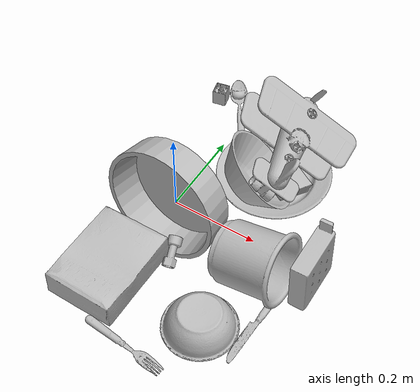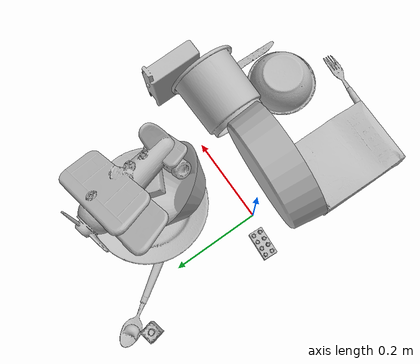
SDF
<sdf version="1.4">
  <world name="default">
    <light name="light1" type="point">
      <pose>0 0 1 0 0 0</pose>
      <diffuse>3 3 3 1</diffuse>
      <specular>3 3 3 1</specular>
    </light>
    <light name="light2" type="point">
      <pose>0 0.5 2 0 0 0</pose>
      <diffuse>1 1 1 1</diffuse>
      <specular>1 1 1 1</specular>
    </light>
    <light name="light3" type="point">
      <pose>0 0.5 2 0 0 0</pose>
      <diffuse>3 3 3 1</diffuse>
      <specular>3 3 3 1</specular>
    </light>
    <scene>
      <ambient>0.7 0.7 0.7</ambient>
    </scene>
    <model name="plate1">
      <link name="link_plate1">
        <collision name="default">
          <geometry>
            <mesh>
              <uri>model://plate/collision_meshes/collision.obj</uri>
              <scale>1.0 1.0 1.0</scale>
            </mesh>
          </geometry>
          <surface>
            <friction>
              <ode>
                <mu>0.5</mu>
                <mu2>0.5</mu2>
              </ode>
            </friction>
          <contact>
        <ode>
            <max_vel>0</max_vel>
            <min_depth>0.0001</min_depth>
            <kp>1e8</kp>
        </ode>
    </contact></surface>
        </collision>
        <visual name="default">
          <geometry>
            <mesh>
              <uri>model://plate/visual_meshes/visual.dae</uri>
              <scale>1.0 1.0 1.0</scale>
            </mesh>
          </geometry>
        </visual>
        <inertial>
          <mass>0.1516857147216797</mass>
          <pose>-0.0006044649053364992 0.00027825761935673654 -0.0010561972158029675 0.002218765199568956 -0.003225488596237322 0.4526153800388047</pose>
          <inertia>
            <ixx>0.00070958876</ixx>
            <iyy>0.0007028018</iyy>
            <izz>0.00138785</izz>
            <ixy>0</ixy>
            <ixz>0</ixz>
            <iyz>0</iyz>
          </inertia>
        </inertial>
      </link>
      <pose>0.14870096743106842 0.17411980032920837 0.013738158158957958 6.141627667578424e-05 -1.699594887896289e-05 0.7023719165703675</pose>
    </model>
    <model name="plate2">
      <link name="link_plate2">
        <collision name="default">
          <geometry>
            <mesh>
              <uri>model://pan_tefal/collision_meshes/collision.obj</uri>
              <scale>1.0 1.0 1.0</scale>
            </mesh>
          </geometry>
          <surface>
            <friction>
              <ode>
                <mu>0.5</mu>
                <mu2>0.5</mu2>
              </ode>
            </friction>
          <contact>
        <ode>
            <max_vel>0</max_vel>
            <min_depth>0.0001</min_depth>
            <kp>1e8</kp>
        </ode>
    </contact></surface>
        </collision>
        <visual name="default">
          <geometry>
            <mesh>
              <uri>model://pan_tefal/visual_meshes/visual.dae</uri>
              <scale>1.0 1.0 1.0</scale>
            </mesh>
          </geometry>
        </visual>
        <inertial>
          <mass>1.0862284898757935</mass>
          <pose>-0.00018001910939347 3.2794348953757435e-05 -0.00851493515074253 0.0008190334899032376 -0.0003301482999058744 -0.3318501395419688</pose>
          <inertia>
            <ixx>0.0074981838</ixx>
            <iyy>0.007546525</iyy>
            <izz>0.013802713</izz>
            <ixy>0</ixy>
            <ixz>0</ixz>
            <iyz>0</iyz>
          </inertia>
        </inertial>
      </link>
      <pose>0.03981665149331093 -0.0755617618560791 0.12880486249923706 1.4170503664129595 0.823294803985501 -0.17547519777109918</pose>
    </model>
    <model name="bowl1">
      <link name="link_bowl1">
        <collision name="default">
          <geometry>
            <mesh>
              <uri>model://bowl_a/collision_meshes/collision.obj</uri>
              <scale>1.0 1.0 1.0</scale>
            </mesh>
          </geometry>
          <surface>
            <friction>
              <ode>
                <mu>0.5</mu>
                <mu2>0.5</mu2>
              </ode>
            </friction>
          <contact>
        <ode>
            <max_vel>0</max_vel>
            <min_depth>0.0001</min_depth>
            <kp>1e8</kp>
        </ode>
    </contact></surface>
        </collision>
        <visual name="default">
          <geometry>
            <mesh>
              <uri>model://bowl_a/visual_meshes/visual.dae</uri>
              <scale>1.0 1.0 1.0</scale>
            </mesh>
          </geometry>
        </visual>
        <inertial>
          <mass>0.23323877155780792</mass>
          <pose>0.0002786752884276211 4.7312129026977345e-05 -0.001376529224216938 -0.000980538139416196 -0.00109382495954127 -0.19123674059098103</pose>
          <inertia>
            <ixx>0.0006640416</ixx>
            <iyy>0.0006681184</iyy>
            <izz>0.0011810234</izz>
            <ixy>0</ixy>
            <ixz>0</ixz>
            <iyz>0</iyz>
          </inertia>
        </inertial>
      </link>
      <pose>0.12943598628044128 0.10585661977529526 0.06788426637649536 -0.41808294717440764 0.7521772602362682 0.10117856612589782</pose>
    </model>
    <model name="bowl2">
      <link name="link_bowl2">
        <collision name="default">
          <geometry>
            <mesh>
              <uri>model://bowl/collision_meshes/collision.obj</uri>
              <scale>1.0 1.0 1.0</scale>
            </mesh>
          </geometry>
          <surface>
            <friction>
              <ode>
                <mu>0.5</mu>
                <mu2>0.5</mu2>
              </ode>
            </friction>
          <contact>
        <ode>
            <max_vel>0</max_vel>
            <min_depth>0.0001</min_depth>
            <kp>1e8</kp>
        </ode>
    </contact></surface>
        </collision>
        <visual name="default">
          <geometry>
            <mesh>
              <uri>model://bowl/visual_meshes/visual.dae</uri>
              <scale>1.0 1.0 1.0</scale>
            </mesh>
          </geometry>
        </visual>
        <inertial>
          <mass>0.08787161856889725</mass>
          <pose>0.00020445531117729843 -0.0010302038863301277 -0.0008042651461437345 -0.015764035308279474 0.014546860922519275 0.7140443952173783</pose>
          <inertia>
            <ixx>0.00020184812</ixx>
            <iyy>0.00019733804</iyy>
            <izz>0.00033957793</izz>
            <ixy>0</ixy>
            <ixz>0</ixz>
            <iyz>0</iyz>
          </inertia>
        </inertial>
      </link>
      <pose>0.21849307417869568 -0.2398568093776703 0.0272473506629467 -3.132724117568045 0.000675453981492884 2.170110615537321</pose>
    </model>
    <model name="silverware1">
      <link name="link_silverware1">
        <collision name="default">
          <geometry>
            <mesh>
              <uri>model://spoon/collision_meshes/collision.obj</uri>
              <scale>1.0 1.0 1.0</scale>
            </mesh>
          </geometry>
          <surface>
            <friction>
              <ode>
                <mu>0.5</mu>
                <mu2>0.5</mu2>
              </ode>
            </friction>
          <contact>
        <ode>
            <max_vel>0</max_vel>
            <min_depth>0.0001</min_depth>
            <kp>1e8</kp>
        </ode>
    </contact></surface>
        </collision>
        <visual name="default">
          <geometry>
            <mesh>
              <uri>model://spoon/visual_meshes/visual.dae</uri>
              <scale>1.0 1.0 1.0</scale>
            </mesh>
          </geometry>
        </visual>
        <inertial>
          <mass>0.028818774968385696</mass>
          <pose>-0.0055263228714466095 -0.0016034181462600827 -0.0007271657814271748 0.03521556092832266 -0.039065843026344464 0.006150610888934851</pose>
          <inertia>
            <ixx>1.6029475e-06</ixx>
            <iyy>0.0001096545</iyy>
            <izz>0.000110445</izz>
            <ixy>0</ixy>
            <ixz>0</ixz>
            <iyz>0</iyz>
          </inertia>
        </inertial>
      </link>
      <pose>-0.01865953952074051 0.2990374267101288 0.008385262452065945 0.006729193056312612 0.026893004296269583 2.1657593229345946</pose>
    </model>
    <model name="box1">
      <link name="link_box1">
        <collision name="default">
          <geometry>
            <mesh>
              <uri>model://cracker_box/collision_meshes/collision.obj</uri>
              <scale>1.0 1.0 1.0</scale>
            </mesh>
          </geometry>
          <surface>
            <friction>
              <ode>
                <mu>0.5</mu>
                <mu2>0.5</mu2>
              </ode>
            </friction>
          <contact>
        <ode>
            <max_vel>0</max_vel>
            <min_depth>0.0001</min_depth>
            <kp>1e8</kp>
        </ode>
    </contact></surface>
        </collision>
        <visual name="default">
          <geometry>
            <mesh>
              <uri>model://cracker_box/visual_meshes/visual.dae</uri>
              <scale>1.0 1.0 1.0</scale>
            </mesh>
          </geometry>
        </visual>
        <inertial>
          <mass>2.9781224727630615</mass>
          <pose>0.0009464174509048462 0.00025434247800149024 -0.0017029534792527556 -0.0003162077703261406 -0.01110649239447325 0.0025467938390949236</pose>
          <inertia>
            <ixx>0.007575013</ixx>
            <iyy>0.012507835</iyy>
            <izz>0.017849829</izz>
            <ixy>0</ixy>
            <ixz>0</ixz>
            <iyz>0</iyz>
          </inertia>
        </inertial>
      </link>
      <pose>-0.012931822799146175 -0.23197460174560547 0.036481812596321106 -0.011786535697046598 -0.007366159832075288 1.5548254275877826</pose>
    </model>
    <model name="box2">
      <link name="link_box2">
        <collision name="default">
          <geometry>
            <mesh>
              <uri>model://gelatin_box/collision_meshes/collision.obj</uri>
              <scale>1.0 1.0 1.0</scale>
            </mesh>
          </geometry>
          <surface>
            <friction>
              <ode>
                <mu>0.5</mu>
                <mu2>0.5</mu2>
              </ode>
            </friction>
          <contact>
        <ode>
            <max_vel>0</max_vel>
            <min_depth>0.0001</min_depth>
            <kp>1e8</kp>
        </ode>
    </contact></surface>
        </collision>
        <visual name="default">
          <geometry>
            <mesh>
              <uri>model://gelatin_box/visual_meshes/visual.dae</uri>
              <scale>1.0 1.0 1.0</scale>
            </mesh>
          </geometry>
        </visual>
        <inertial>
          <mass>0.16266882419586182</mass>
          <pose>0.0004319618456065655 0.00011156871914863586 -0.0003640321083366871 -0.0010503720968416132 -0.004755819155016646 0.016440559472150423</pose>
          <inertia>
            <ixx>0.00011483092</ixx>
            <iyy>8.202313e-05</iyy>
            <izz>0.00017479825</izz>
            <ixy>0</ixy>
            <ixz>0</ixz>
            <iyz>0</iyz>
          </inertia>
        </inertial>
      </link>
      <pose>0.19207265973091125 0.1578526496887207 0.04064542055130005 0.33500893612487354 -0.1765601525400918 2.709653114596254</pose>
    </model>
    <model name="cup1">
      <link name="link_cup1">
        <collision name="default">
          <geometry>
            <mesh>
              <uri>model://f_cups/collision_meshes/collision.obj</uri>
              <scale>2.0 2.0 2.0</scale>
            </mesh>
          </geometry>
          <surface>
            <friction>
              <ode>
                <mu>0.5</mu>
                <mu2>0.5</mu2>
              </ode>
            </friction>
          <contact>
        <ode>
            <max_vel>0</max_vel>
            <min_depth>0.0001</min_depth>
            <kp>1e8</kp>
        </ode>
    </contact></surface>
        </collision>
        <visual name="default">
          <geometry>
            <mesh>
              <uri>model://f_cups/visual_meshes/visual.dae</uri>
              <scale>2.0 2.0 2.0</scale>
            </mesh>
          </geometry>
        </visual>
        <inertial>
          <mass>0.6683602333068848</mass>
          <pose>-0.006342936307191849 -0.0012480152072384953 -0.0073110745288431644 0.7862253042657107 -0.260793604503958 -0.18237387444081576</pose>
          <inertia>
            <ixx>0.0025131067</ixx>
            <iyy>0.0026362767</iyy>
            <izz>0.0027444381</izz>
            <ixy>0</ixy>
            <ixz>0</ixz>
            <iyz>0</iyz>
          </inertia>
        </inertial>
      </link>
      <pose>0.24993127584457397 -0.08755441009998322 0.07690344005823135 1.4100860421215082 -0.29900247501083765 1.651753350535395</pose>
    </model>
    <model name="silverware2">
      <link name="link_silverware2">
        <collision name="default">
          <geometry>
            <mesh>
              <uri>model://knife/collision_meshes/collision.obj</uri>
              <scale>1.0 1.0 1.0</scale>
            </mesh>
          </geometry>
          <surface>
            <friction>
              <ode>
                <mu>0.5</mu>
                <mu2>0.5</mu2>
              </ode>
            </friction>
          <contact>
        <ode>
            <max_vel>0</max_vel>
            <min_depth>0.0001</min_depth>
            <kp>1e8</kp>
        </ode>
    </contact></surface>
        </collision>
        <visual name="default">
          <geometry>
            <mesh>
              <uri>model://knife/visual_meshes/visual.dae</uri>
              <scale>1.0 1.0 1.0</scale>
            </mesh>
          </geometry>
        </visual>
        <inertial>
          <mass>0.03087119571864605</mass>
          <pose>-0.023785250261425972 0.0015275123296305537 5.062009586254135e-05 0.07305987484925712 0.017248420899959087 -0.007409824084002247</pose>
          <inertia>
            <ixx>8.762499e-07</ixx>
            <iyy>0.000118602155</iyy>
            <izz>0.00011888435</izz>
            <ixy>0</ixy>
            <ixz>0</ixz>
            <iyz>0</iyz>
          </inertia>
        </inertial>
      </link>
      <pose>0.3101923167705536 -0.17684757709503174 0.007949828170239925 -0.021652844958936986 -0.014498860240088974 -1.5891129802059445</pose>
    </model>
    <model name="silverware3">
      <link name="link_silverware3">
        <collision name="default">
          <geometry>
            <mesh>
              <uri>model://fork/collision_meshes/collision.obj</uri>
              <scale>1.0 1.0 1.0</scale>
            </mesh>
          </geometry>
          <surface>
            <friction>
              <ode>
                <mu>0.5</mu>
                <mu2>0.5</mu2>
              </ode>
            </friction>
          <contact>
        <ode>
            <max_vel>0</max_vel>
            <min_depth>0.0001</min_depth>
            <kp>1e8</kp>
        </ode>
    </contact></surface>
        </collision>
        <visual name="default">
          <geometry>
            <mesh>
              <uri>model://fork/visual_meshes/visual.dae</uri>
              <scale>1.0 1.0 1.0</scale>
            </mesh>
          </geometry>
        </visual>
        <inertial>
          <mass>0.015284496359527111</mass>
          <pose>-0.02957003004848957 0.00046588233090005815 0.00032188600744120777 -0.013550803329795006 -0.010977829430356707 0.014453895799763906</pose>
          <inertia>
            <ixx>5.358081e-07</ixx>
            <iyy>3.9903432e-05</iyy>
            <izz>4.0143095e-05</izz>
            <ixy>0</ixy>
            <ixz>0</ixz>
            <iyz>0</iyz>
          </inertia>
        </inertial>
      </link>
      <pose>0.11293406039476395 -0.35836678743362427 0.007446612231433392 -3.0635015388932243 0.002835795645173165 -0.10214177916655592</pose>
    </model>
    <model name="toy1">
      <link name="link_toy1">
        <collision name="default">
          <geometry>
            <mesh>
              <uri>model://c_toy_airplane/collision_meshes/collision.obj</uri>
              <scale>1.0 1.0 1.0</scale>
            </mesh>
          </geometry>
          <surface>
            <friction>
              <ode>
                <mu>0.5</mu>
                <mu2>0.5</mu2>
              </ode>
            </friction>
          <contact>
        <ode>
            <max_vel>0</max_vel>
            <min_depth>0.0001</min_depth>
            <kp>1e8</kp>
        </ode>
    </contact></surface>
        </collision>
        <visual name="default">
          <geometry>
            <mesh>
              <uri>model://c_toy_airplane/visual_meshes/visual.dae</uri>
              <scale>1.0 1.0 1.0</scale>
            </mesh>
          </geometry>
        </visual>
        <inertial>
          <mass>0.014899278059601784</mass>
          <pose>-0.0002302424400113523 -4.428088118402229e-07 -0.006080529186874628 -0.00619304524108313 -0.016797611161866028 0.7655100812139064</pose>
          <inertia>
            <ixx>6.841441e-06</ixx>
            <iyy>6.822133e-06</iyy>
            <izz>1.6062353e-06</izz>
            <ixy>0</ixy>
            <ixz>0</ixz>
            <iyz>0</iyz>
          </inertia>
        </inertial>
      </link>
      <pose>0.07938630878925323 -0.13165754079818726 0.027878139168024063 2.1035552880954436 0.6577556407512614 0.6473772916233983</pose>
    </model>
    <model name="toy2">
      <link name="link_toy2">
        <collision name="default">
          <geometry>
            <mesh>
              <uri>model://nine_hole_peg_test/collision_meshes/collision.obj</uri>
              <scale>1.0 1.0 1.0</scale>
            </mesh>
          </geometry>
          <surface>
            <friction>
              <ode>
                <mu>0.5</mu>
                <mu2>0.5</mu2>
              </ode>
            </friction>
          <contact>
        <ode>
            <max_vel>0</max_vel>
            <min_depth>0.0001</min_depth>
            <kp>1e8</kp>
        </ode>
    </contact></surface>
        </collision>
        <visual name="default">
          <geometry>
            <mesh>
              <uri>model://nine_hole_peg_test/visual_meshes/visual.dae</uri>
              <scale>1.0 1.0 1.0</scale>
            </mesh>
          </geometry>
        </visual>
        <inertial>
          <mass>0.8674170970916748</mass>
          <pose>-0.004617386031895876 -0.009647614322602749 2.6460689696250483e-05 -0.0014666783129250742 0.0007194188660534222 -0.6342410037611789</pose>
          <inertia>
            <ixx>0.0013563493</ixx>
            <iyy>0.0012664091</iyy>
            <izz>0.0023767245</izz>
            <ixy>0</ixy>
            <ixz>0</ixz>
            <iyz>0</iyz>
          </inertia>
        </inertial>
      </link>
      <pose>0.35513532161712646 -0.02826579287648201 0.0739721730351448 1.5550082058606252 -0.009794723855504632 1.604396705800616</pose>
    </model>
    <model name="toy3">
      <link name="link_toy3">
        <collision name="default">
          <geometry>
            <mesh>
              <uri>model://a_toy_airplane/collision_meshes/collision.obj</uri>
              <scale>1.0 1.0 1.0</scale>
            </mesh>
          </geometry>
          <surface>
            <friction>
              <ode>
                <mu>0.5</mu>
                <mu2>0.5</mu2>
              </ode>
            </friction>
          <contact>
        <ode>
            <max_vel>0</max_vel>
            <min_depth>0.0001</min_depth>
            <kp>1e8</kp>
        </ode>
    </contact></surface>
        </collision>
        <visual name="default">
          <geometry>
            <mesh>
              <uri>model://a_toy_airplane/visual_meshes/visual.dae</uri>
              <scale>1.0 1.0 1.0</scale>
            </mesh>
          </geometry>
        </visual>
        <inertial>
          <mass>1.0043106079101562</mass>
          <pose>0.02516508847475052 -0.003707321360707283 -0.0011962434509769082 -0.01201694293172648 -0.14663499629613377 0.0041490900747424425</pose>
          <inertia>
            <ixx>0.0036471337</ixx>
            <iyy>0.0053146123</iyy>
            <izz>0.0062227584</izz>
            <ixy>0</ixy>
            <ixz>0</ixz>
            <iyz>0</iyz>
          </inertia>
        </inertial>
      </link>
      <pose>0.1756557673215866 0.18162764608860016 0.12942573428153992 0.5787257109386083 0.1454745782541682 1.8903323265831296</pose>
    </model>
    <model name="toy4">
      <link name="link_toy4">
        <collision name="default">
          <geometry>
            <mesh>
              <uri>model://c_lego_duplo/collision_meshes/collision.obj</uri>
              <scale>1.0 1.0 1.0</scale>
            </mesh>
          </geometry>
          <surface>
            <friction>
              <ode>
                <mu>0.5</mu>
                <mu2>0.5</mu2>
              </ode>
            </friction>
          <contact>
        <ode>
            <max_vel>0</max_vel>
            <min_depth>0.0001</min_depth>
            <kp>1e8</kp>
        </ode>
    </contact></surface>
        </collision>
        <visual name="default">
          <geometry>
            <mesh>
              <uri>model://c_lego_duplo/visual_meshes/visual.dae</uri>
              <scale>1.0 1.0 1.0</scale>
            </mesh>
          </geometry>
        </visual>
        <inertial>
          <mass>0.019874408841133118</mass>
          <pose>0.0003164595691487193 0.0001946465636137873 0.0010453156428411603 -0.01152079101413275 0.005900072799474436 0.031100350485514378</pose>
          <inertia>
            <ixx>7.648045e-06</ixx>
            <iyy>2.443061e-06</iyy>
            <izz>8.937529e-06</izz>
            <ixy>0</ixy>
            <ixz>0</ixz>
            <iyz>0</iyz>
          </inertia>
        </inertial>
      </link>
      <pose>-0.06355366855859756 0.0201987586915493 0.011981487274169922 0.008019312193345401 -0.0020916496921386334 1.4883417827525798</pose>
    </model>
    <model name="toy5">
      <link name="link_toy5">
        <collision name="default">
          <geometry>
            <mesh>
              <uri>model://b_lego_duplo/collision_meshes/collision.obj</uri>
              <scale>1.0 1.0 1.0</scale>
            </mesh>
          </geometry>
          <surface>
            <friction>
              <ode>
                <mu>0.5</mu>
                <mu2>0.5</mu2>
              </ode>
            </friction>
          <contact>
        <ode>
            <max_vel>0</max_vel>
            <min_depth>0.0001</min_depth>
            <kp>1e8</kp>
        </ode>
    </contact></surface>
        </collision>
        <visual name="default">
          <geometry>
            <mesh>
              <uri>model://b_lego_duplo/visual_meshes/visual.dae</uri>
              <scale>1.0 1.0 1.0</scale>
            </mesh>
          </geometry>
        </visual>
        <inertial>
          <mass>0.031542204320430756</mass>
          <pose>-0.0001105302435462363 -9.152341590379365e-06 0.001929428894072771 -0.03749493031375769 -0.026354084635952003 0.4518990108557965</pose>
          <inertia>
            <ixx>6.4553496e-06</ixx>
            <iyy>6.4987444e-06</iyy>
            <izz>5.7515063e-06</izz>
            <ixy>0</ixy>
            <ixz>0</ixz>
            <iyz>0</iyz>
          </inertia>
        </inertial>
      </link>
      <pose>-0.08017946034669876 0.31555700302124023 0.02181483991444111 -3.141553705569843 -1.679018471354823e-05 0.2118045847679968</pose>
    </model>
  <physics type="ode">
      <max_contacts>50</max_contacts>
      <ode>
        <solver>
          <type>quick</type>
          <iters>75</iters>
        </solver>
        <constraints>
          <contact_max_correcting_vel>0</contact_max_correcting_vel>
          <contact_surface_layer>0</contact_surface_layer>
        </constraints>
      </ode>
    </physics></world>
</sdf>
